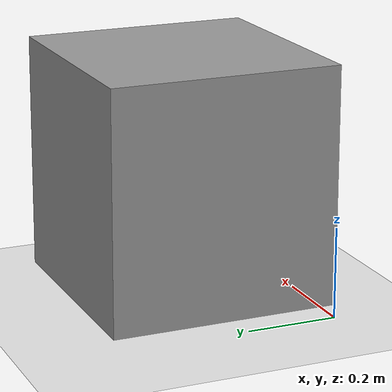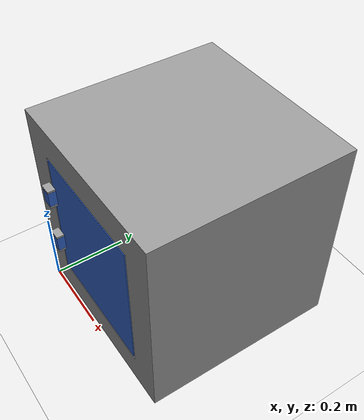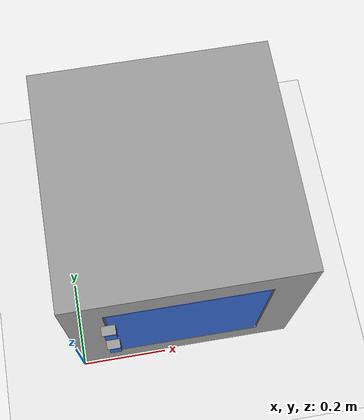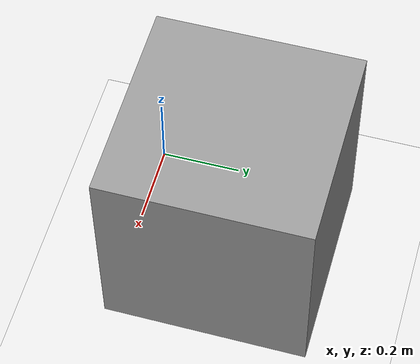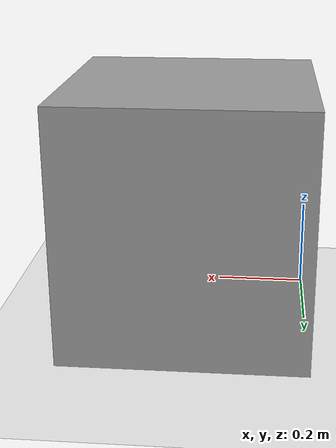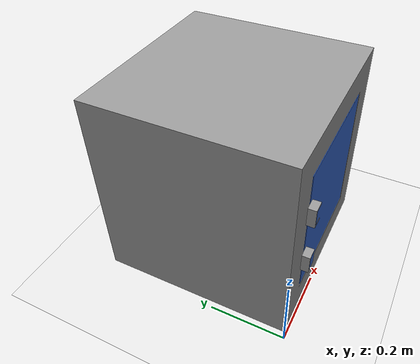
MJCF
<mujoco model="Hinge_Mechanism">
  <!-- COMPILER SETTINGS -->
  <compiler angle="degree" coordinate="local" inertiafromgeom="true" meshdir="." />

  <!-- DEFAULTS -->
  <default>
    <!-- Set default material properties for all geometries -->
    <geom type="mesh" contype="1" conaffinity="1" density="1000"/>
    <!-- Default joint settings -->
    <joint armature="0.01" damping="1.0" />
  </default>

  <!-- ASSETS: Define meshes and materials -->
  <asset>
    <!-- Material for the box (a base color) -->
    <material name="mat_box" rgba="0.6 0.6 0.6 1"/>
    <!-- Material for the door (a distinctive color) -->
    <material name="mat_door" rgba="0.2 0.4 0.8 1"/>
    <!-- Default material for geometries -->
    <material name="geom_default" rgba="0.8 0.8 0.8 1"/>

    <!-- Mesh Definitions -->
    <mesh name="Box" file="Box.stl"/>
    <mesh name="Door" file="Door.stl"/>
  </asset>

<!-- WORLDBODY: Define the physical bodies and their connections -->
<worldbody>
    <!-- Floor for contact -->
    <geom name="floor" type="plane" size="0 0 0.1" rgba="0.9 0.9 0.9 1" />

    <!-- BODY 1: The Stationary Base (Box) -->
    <body name="Base_Box" pos="0 0 0.05">
        <!-- Geometry for visualization and collision -->
        <geom name="box_geom" mesh="Box" material="mat_box" />

        <!-- BODY 2: The Movable Door -->
        <!-- This body will be attached to the Base_Box via a hinge joint. -->
        <body name="Hinged_Door">
            <!-- HINGE JOINT (Revolute Joint) -->
            <joint name="door_hinge"
                   type="hinge"
                   pos="0.075 -0.02 0.165"
                   axis="0 0 1"
                   range="0 90" />

            <!-- Geometry for visualization and collision -->
            <geom name="door_geom" mesh="Door" material="mat_door" />
        </body>
    </body>
  </worldbody>

</mujoco>
